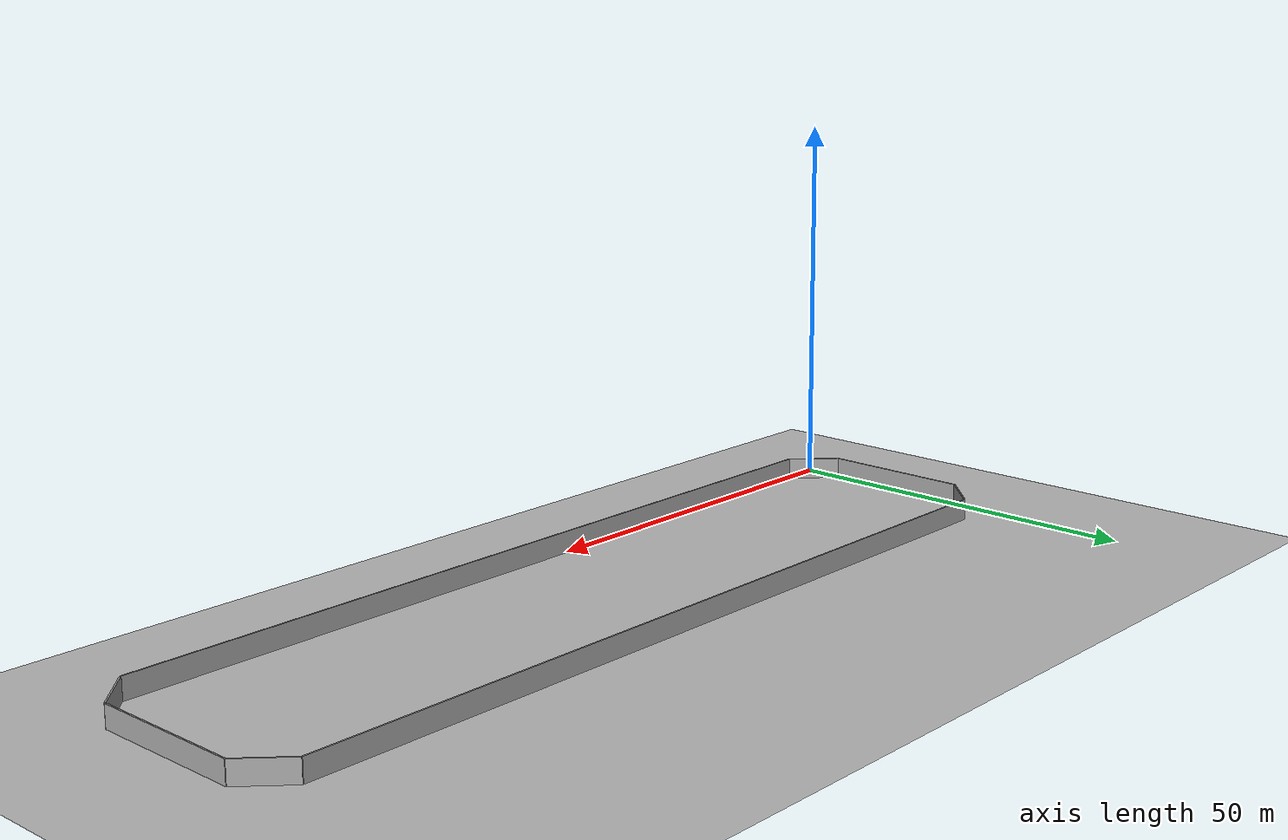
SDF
<?xml version="1.0" ?>

    <!-- this file is auto generated using pedsim_gazebo_plugin pkg -->
    <sdf version="1.5">
      <world name="default">

      <!-- Ground Plane -->

      <include>
        <uri>model://ground_plane</uri>
      </include>

      <include>
        <uri>model://sun</uri>
      </include>

     <model name='grey_wall_1'>
      <static>1</static>
      <link name='link'>

	  <pose frame=''>60.0 0.0  1.4 0 0 0.0</pose>

        <collision name='collision'>
          <geometry>
            <box>

	     <size> 110.0 .2  2.8 </size>

      	   </box>
          </geometry>
          <max_contacts>10</max_contacts>
          <surface>
            <contact>
              <ode/>
            </contact>
            <bounce/>
            <friction>
              <torsional>
                <ode/>
              </torsional>
              <ode/>
            </friction>
          </surface>
        </collision>
        <visual name='visual'>
          <cast_shadows>0</cast_shadows>
          <geometry>
            <box>

	     <size> 110.0 .2  2.8 </size>

      	   </box>
       </geometry>
          <material>
            <script>
              <uri>model://grey_wall/materials/scripts</uri>
              <uri>model://grey_wall/materials/textures</uri>
              <name>vrc/grey_wall</name>
            </script>
          </material>
        </visual>
        <self_collide>0</self_collide>
        <enable_wind>0</enable_wind>
        <kinematic>0</kinematic>
      </link>
    </model>

     <model name='grey_wall_2'>
      <static>1</static>
      <link name='link'>

	  <pose frame=''>60.0 30.0  1.4 0 0 0.0</pose>

        <collision name='collision'>
          <geometry>
            <box>

	     <size> 110.0 .2  2.8 </size>

      	   </box>
          </geometry>
          <max_contacts>10</max_contacts>
          <surface>
            <contact>
              <ode/>
            </contact>
            <bounce/>
            <friction>
              <torsional>
                <ode/>
              </torsional>
              <ode/>
            </friction>
          </surface>
        </collision>
        <visual name='visual'>
          <cast_shadows>0</cast_shadows>
          <geometry>
            <box>

	     <size> 110.0 .2  2.8 </size>

      	   </box>
       </geometry>
          <material>
            <script>
              <uri>model://grey_wall/materials/scripts</uri>
              <uri>model://grey_wall/materials/textures</uri>
              <name>vrc/grey_wall</name>
            </script>
          </material>
        </visual>
        <self_collide>0</self_collide>
        <enable_wind>0</enable_wind>
        <kinematic>0</kinematic>
      </link>
    </model>

     <model name='grey_wall_3'>
      <static>1</static>
      <link name='link'>

	  <pose frame=''>2.5 2.5  1.4 0 0 -0.785398163397</pose>

        <collision name='collision'>
          <geometry>
            <box>

	     <size> 7.07106781187 .2  2.8 </size>

      	   </box>
          </geometry>
          <max_contacts>10</max_contacts>
          <surface>
            <contact>
              <ode/>
            </contact>
            <bounce/>
            <friction>
              <torsional>
                <ode/>
              </torsional>
              <ode/>
            </friction>
          </surface>
        </collision>
        <visual name='visual'>
          <cast_shadows>0</cast_shadows>
          <geometry>
            <box>

	     <size> 7.07106781187 .2  2.8 </size>

      	   </box>
       </geometry>
          <material>
            <script>
              <uri>model://grey_wall/materials/scripts</uri>
              <uri>model://grey_wall/materials/textures</uri>
              <name>vrc/grey_wall</name>
            </script>
          </material>
        </visual>
        <self_collide>0</self_collide>
        <enable_wind>0</enable_wind>
        <kinematic>0</kinematic>
      </link>
    </model>

     <model name='grey_wall_4'>
      <static>1</static>
      <link name='link'>

	  <pose frame=''>2.5 27.5  1.4 0 0 0.785398163397</pose>

        <collision name='collision'>
          <geometry>
            <box>

	     <size> 7.07106781187 .2  2.8 </size>

      	   </box>
          </geometry>
          <max_contacts>10</max_contacts>
          <surface>
            <contact>
              <ode/>
            </contact>
            <bounce/>
            <friction>
              <torsional>
                <ode/>
              </torsional>
              <ode/>
            </friction>
          </surface>
        </collision>
        <visual name='visual'>
          <cast_shadows>0</cast_shadows>
          <geometry>
            <box>

	     <size> 7.07106781187 .2  2.8 </size>

      	   </box>
       </geometry>
          <material>
            <script>
              <uri>model://grey_wall/materials/scripts</uri>
              <uri>model://grey_wall/materials/textures</uri>
              <name>vrc/grey_wall</name>
            </script>
          </material>
        </visual>
        <self_collide>0</self_collide>
        <enable_wind>0</enable_wind>
        <kinematic>0</kinematic>
      </link>
    </model>

     <model name='grey_wall_5'>
      <static>1</static>
      <link name='link'>

	  <pose frame=''>0.0 15.0  1.4 0 0 1.57</pose>

        <collision name='collision'>
          <geometry>
            <box>

	     <size> 20.0 .2  2.8 </size>

      	   </box>
          </geometry>
          <max_contacts>10</max_contacts>
          <surface>
            <contact>
              <ode/>
            </contact>
            <bounce/>
            <friction>
              <torsional>
                <ode/>
              </torsional>
              <ode/>
            </friction>
          </surface>
        </collision>
        <visual name='visual'>
          <cast_shadows>0</cast_shadows>
          <geometry>
            <box>

	     <size> 20.0 .2  2.8 </size>

      	   </box>
       </geometry>
          <material>
            <script>
              <uri>model://grey_wall/materials/scripts</uri>
              <uri>model://grey_wall/materials/textures</uri>
              <name>vrc/grey_wall</name>
            </script>
          </material>
        </visual>
        <self_collide>0</self_collide>
        <enable_wind>0</enable_wind>
        <kinematic>0</kinematic>
      </link>
    </model>

     <model name='grey_wall_6'>
      <static>1</static>
      <link name='link'>

	  <pose frame=''>117.5 27.5  1.4 0 0 -0.785398163397</pose>

        <collision name='collision'>
          <geometry>
            <box>

	     <size> 7.07106781187 .2  2.8 </size>

      	   </box>
          </geometry>
          <max_contacts>10</max_contacts>
          <surface>
            <contact>
              <ode/>
            </contact>
            <bounce/>
            <friction>
              <torsional>
                <ode/>
              </torsional>
              <ode/>
            </friction>
          </surface>
        </collision>
        <visual name='visual'>
          <cast_shadows>0</cast_shadows>
          <geometry>
            <box>

	     <size> 7.07106781187 .2  2.8 </size>

      	   </box>
       </geometry>
          <material>
            <script>
              <uri>model://grey_wall/materials/scripts</uri>
              <uri>model://grey_wall/materials/textures</uri>
              <name>vrc/grey_wall</name>
            </script>
          </material>
        </visual>
        <self_collide>0</self_collide>
        <enable_wind>0</enable_wind>
        <kinematic>0</kinematic>
      </link>
    </model>

     <model name='grey_wall_7'>
      <static>1</static>
      <link name='link'>

	  <pose frame=''>117.5 2.5  1.4 0 0 0.785398163397</pose>

        <collision name='collision'>
          <geometry>
            <box>

	     <size> 7.07106781187 .2  2.8 </size>

      	   </box>
          </geometry>
          <max_contacts>10</max_contacts>
          <surface>
            <contact>
              <ode/>
            </contact>
            <bounce/>
            <friction>
              <torsional>
                <ode/>
              </torsional>
              <ode/>
            </friction>
          </surface>
        </collision>
        <visual name='visual'>
          <cast_shadows>0</cast_shadows>
          <geometry>
            <box>

	     <size> 7.07106781187 .2  2.8 </size>

      	   </box>
       </geometry>
          <material>
            <script>
              <uri>model://grey_wall/materials/scripts</uri>
              <uri>model://grey_wall/materials/textures</uri>
              <name>vrc/grey_wall</name>
            </script>
          </material>
        </visual>
        <self_collide>0</self_collide>
        <enable_wind>0</enable_wind>
        <kinematic>0</kinematic>
      </link>
    </model>

     <model name='grey_wall_8'>
      <static>1</static>
      <link name='link'>

	  <pose frame=''>120.0 15.0  1.4 0 0 1.57</pose>

        <collision name='collision'>
          <geometry>
            <box>

	     <size> 20.0 .2  2.8 </size>

      	   </box>
          </geometry>
          <max_contacts>10</max_contacts>
          <surface>
            <contact>
              <ode/>
            </contact>
            <bounce/>
            <friction>
              <torsional>
                <ode/>
              </torsional>
              <ode/>
            </friction>
          </surface>
        </collision>
        <visual name='visual'>
          <cast_shadows>0</cast_shadows>
          <geometry>
            <box>

	     <size> 20.0 .2  2.8 </size>

      	   </box>
       </geometry>
          <material>
            <script>
              <uri>model://grey_wall/materials/scripts</uri>
              <uri>model://grey_wall/materials/textures</uri>
              <name>vrc/grey_wall</name>
            </script>
          </material>
        </visual>
        <self_collide>0</self_collide>
        <enable_wind>0</enable_wind>
        <kinematic>0</kinematic>
      </link>
    </model>

            <plugin name="ActorPosesPlugin" filename="libActorPosesPlugin.so">
        </plugin>

      </world>
    </sdf>
